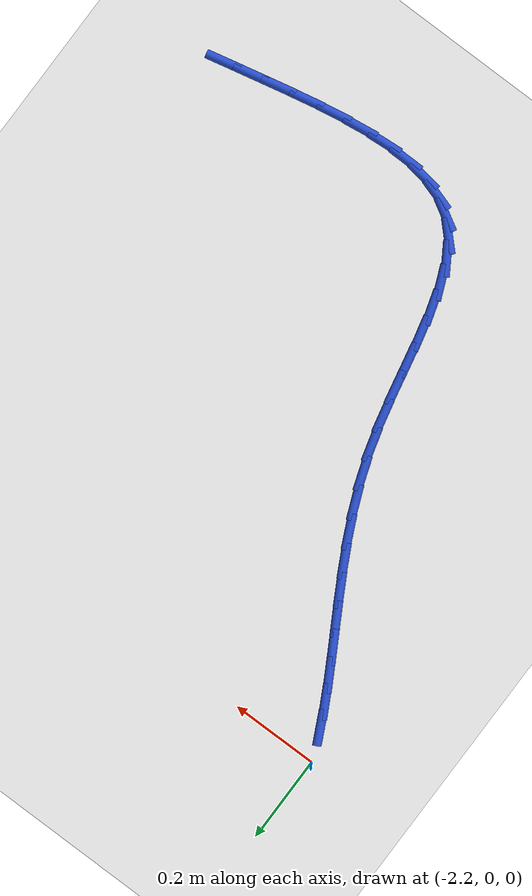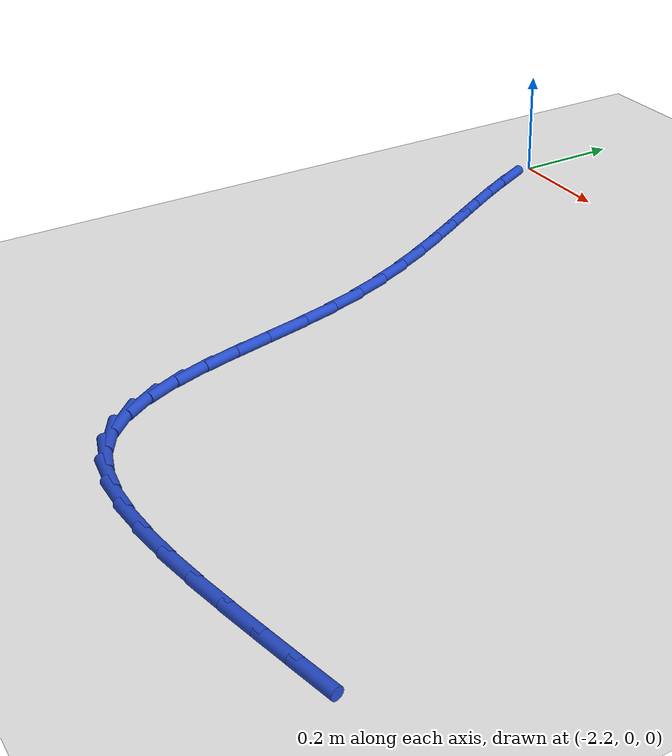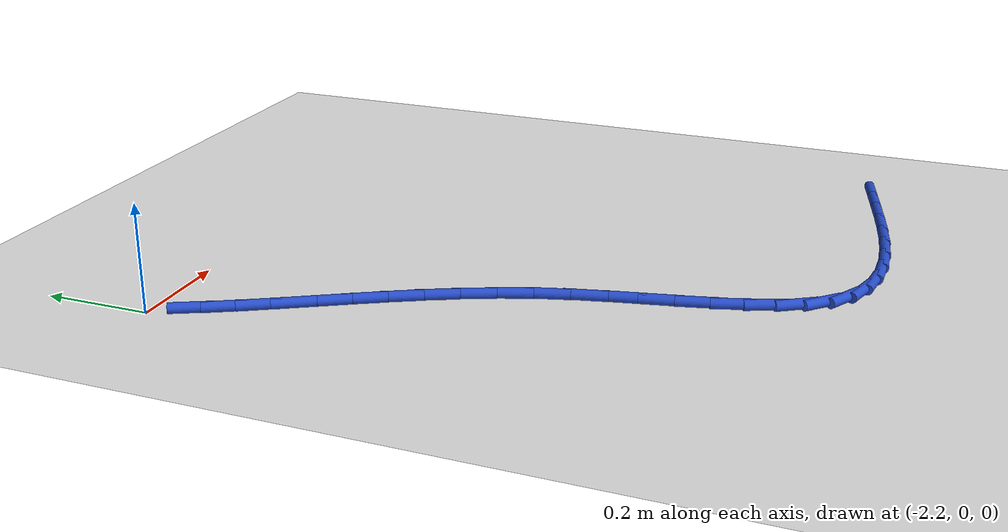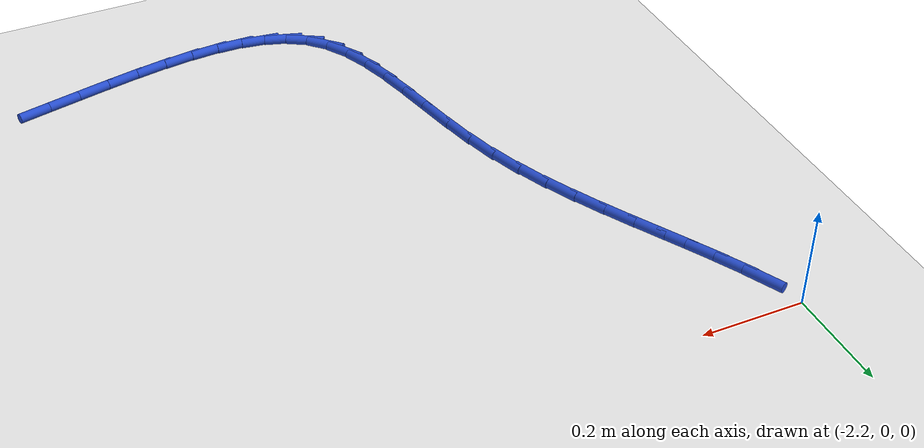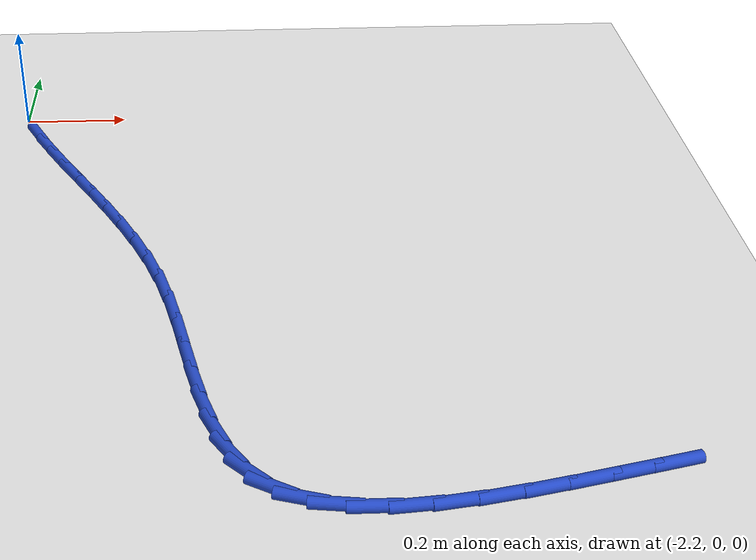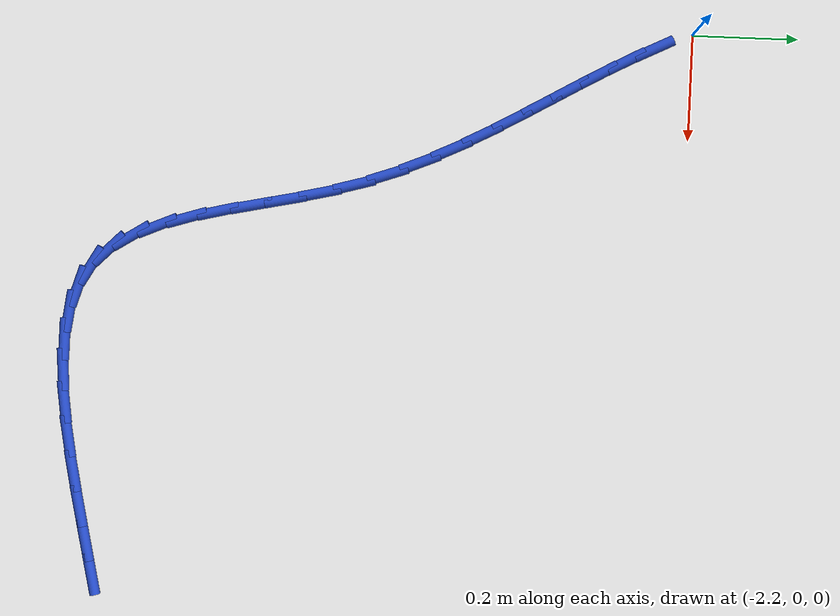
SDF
<sdf version="1.6">
 <world name="default">
  <model name="ground_plane">
   <static>1</static>
   <link name="link">
    <collision name="collision">
     <geometry><plane><normal>0 0 1</normal><size>100 100</size></plane></geometry>
     <surface><friction><ode><mu>100</mu><mu2>50</mu2></ode></friction></surface>
    </collision>
    <visual name="visual">
     <cast_shadows>0</cast_shadows>
     <geometry><plane><normal>0 0 1</normal><size>100 100</size></plane></geometry>
     <material>
      <script><uri>file://media/materials/scripts/gazebo.material</uri><name>Gazebo/WhiteGlow</name></script>
     </material>
    </visual>
   </link>
  </model>
  <model name="line">
   <link name="link_61">
    <pose>-2.1696558348237724 -0.07247194060002596 0.01 0 1.57 -1.1103534886064907</pose>
    <collision name="collision">
     <geometry><cylinder><radius>0.01</radius><length>0.08</length></cylinder></geometry>
    </collision>
    <visual name="visual">
     <material>
      <script><name>Gazebo/Blue</name><uri>file://media/materials/scripts/gazebo.material</uri></script>
     </material>
     <geometry><cylinder><radius>0.01</radius><length>0.08</length></cylinder></geometry>
    </visual>
   </link>
   <link name="link_62">
    <pose>-2.144435640439838 -0.12331906244717913 0.01 0 1.57 -1.076029853168065</pose>
    <collision name="collision">
     <geometry><cylinder><radius>0.01</radius><length>0.08</length></cylinder></geometry>
    </collision>
    <visual name="visual">
     <material>
      <script><name>Gazebo/Blue</name><uri>file://media/materials/scripts/gazebo.material</uri></script>
     </material>
     <geometry><cylinder><radius>0.01</radius><length>0.08</length></cylinder></geometry>
    </visual>
   </link>
   <link name="link_63">
    <pose>-2.116713575646689 -0.17470128853153608 0.01 0 1.57 -1.0555149021414167</pose>
    <collision name="collision">
     <geometry><cylinder><radius>0.01</radius><length>0.08</length></cylinder></geometry>
    </collision>
    <visual name="visual">
     <material>
      <script><name>Gazebo/Blue</name><uri>file://media/materials/scripts/gazebo.material</uri></script>
     </material>
     <geometry><cylinder><radius>0.01</radius><length>0.08</length></cylinder></geometry>
    </visual>
   </link>
   <link name="link_64">
    <pose>-2.0872167670555912 -0.22678696811822707 0.01 0 1.57 -1.0476308974208117</pose>
    <collision name="collision">
     <geometry><cylinder><radius>0.01</radius><length>0.08</length></cylinder></geometry>
    </collision>
    <visual name="visual">
     <material>
      <script><name>Gazebo/Blue</name><uri>file://media/materials/scripts/gazebo.material</uri></script>
     </material>
     <geometry><cylinder><radius>0.01</radius><length>0.08</length></cylinder></geometry>
    </visual>
   </link>
   <link name="link_65">
    <pose>-2.0566723412778054 -0.27974445047238417 0.01 0 1.57 -1.0515228263617589</pose>
    <collision name="collision">
     <geometry><cylinder><radius>0.01</radius><length>0.08</length></cylinder></geometry>
    </collision>
    <visual name="visual">
     <material>
      <script><name>Gazebo/Blue</name><uri>file://media/materials/scripts/gazebo.material</uri></script>
     </material>
     <geometry><cylinder><radius>0.01</radius><length>0.08</length></cylinder></geometry>
    </visual>
   </link>
   <link name="link_66">
    <pose>-2.0258074249245968 -0.3337420848591397 0.01 0 1.57 -1.0666342161551619</pose>
    <collision name="collision">
     <geometry><cylinder><radius>0.01</radius><length>0.08</length></cylinder></geometry>
    </collision>
    <visual name="visual">
     <material>
      <script><name>Gazebo/Blue</name><uri>file://media/materials/scripts/gazebo.material</uri></script>
     </material>
     <geometry><cylinder><radius>0.01</radius><length>0.08</length></cylinder></geometry>
    </visual>
   </link>
   <link name="link_67">
    <pose>-1.9953491446072291 -0.3889482205436237 0.01 0 1.57 -1.0926501760157672</pose>
    <collision name="collision">
     <geometry><cylinder><radius>0.01</radius><length>0.08</length></cylinder></geometry>
    </collision>
    <visual name="visual">
     <material>
      <script><name>Gazebo/Blue</name><uri>file://media/materials/scripts/gazebo.material</uri></script>
     </material>
     <geometry><cylinder><radius>0.01</radius><length>0.08</length></cylinder></geometry>
    </visual>
   </link>
   <link name="link_68">
    <pose>-1.9660246269369646 -0.4455312067909683 0.01 0 1.57 -1.129417018185429</pose>
    <collision name="collision">
     <geometry><cylinder><radius>0.01</radius><length>0.08</length></cylinder></geometry>
    </collision>
    <visual name="visual">
     <material>
      <script><name>Gazebo/Blue</name><uri>file://media/materials/scripts/gazebo.material</uri></script>
     </material>
     <geometry><cylinder><radius>0.01</radius><length>0.08</length></cylinder></geometry>
    </visual>
   </link>
   <link name="link_69">
    <pose>-1.9385609985250676 -0.5036593928663053 0.01 0 1.57 -1.176837661398522</pose>
    <collision name="collision">
     <geometry><cylinder><radius>0.01</radius><length>0.08</length></cylinder></geometry>
    </collision>
    <visual name="visual">
     <material>
      <script><name>Gazebo/Blue</name><uri>file://media/materials/scripts/gazebo.material</uri></script>
     </material>
     <geometry><cylinder><radius>0.01</radius><length>0.08</length></cylinder></geometry>
    </visual>
   </link>
   <link name="link_70">
    <pose>-1.9136853859828011 -0.5635011280347668 0.01 0 1.57 -1.2347394053772378</pose>
    <collision name="collision">
     <geometry><cylinder><radius>0.01</radius><length>0.08</length></cylinder></geometry>
    </collision>
    <visual name="visual">
     <material>
      <script><name>Gazebo/Blue</name><uri>file://media/materials/scripts/gazebo.material</uri></script>
     </material>
     <geometry><cylinder><radius>0.01</radius><length>0.08</length></cylinder></geometry>
    </visual>
   </link>
   <link name="link_71">
    <pose>-1.8921249159214295 -0.6252247615614828 0.01 0 1.57 -1.2975292385699435</pose>
    <collision name="collision">
     <geometry><cylinder><radius>0.01</radius><length>0.08</length></cylinder></geometry>
    </collision>
    <visual name="visual">
     <material>
      <script><name>Gazebo/Blue</name><uri>file://media/materials/scripts/gazebo.material</uri></script>
     </material>
     <geometry><cylinder><radius>0.01</radius><length>0.08</length></cylinder></geometry>
    </visual>
   </link>
   <link name="link_72">
    <pose>-1.8743107619497537 -0.6887834848694648 0.01 0 1.57 -1.3417143169640007</pose>
    <collision name="collision">
     <geometry><cylinder><radius>0.01</radius><length>0.08</length></cylinder></geometry>
    </collision>
    <visual name="visual">
     <material>
      <script><name>Gazebo/Blue</name><uri>file://media/materials/scripts/gazebo.material</uri></script>
     </material>
     <geometry><cylinder><radius>0.01</radius><length>0.08</length></cylinder></geometry>
    </visual>
   </link>
   <link name="link_73">
    <pose>-1.8593054659311035 -0.7531354940596149 0.01 0 1.57 -1.3618856849806722</pose>
    <collision name="collision">
     <geometry><cylinder><radius>0.01</radius><length>0.08</length></cylinder></geometry>
    </collision>
    <visual name="visual">
     <material>
      <script><name>Gazebo/Blue</name><uri>file://media/materials/scripts/gazebo.material</uri></script>
     </material>
     <geometry><cylinder><radius>0.01</radius><length>0.08</length></cylinder></geometry>
    </visual>
   </link>
   <link name="link_74">
    <pose>-1.845776213327826 -0.816951561116857 0.01 0 1.57 -1.3579924521917848</pose>
    <collision name="collision">
     <geometry><cylinder><radius>0.01</radius><length>0.08</length></cylinder></geometry>
    </collision>
    <visual name="visual">
     <material>
      <script><name>Gazebo/Blue</name><uri>file://media/materials/scripts/gazebo.material</uri></script>
     </material>
     <geometry><cylinder><radius>0.01</radius><length>0.08</length></cylinder></geometry>
    </visual>
   </link>
   <link name="link_75">
    <pose>-1.8323901509353353 -0.8789024299152499 0.01 0 1.57 -1.3276346102083723</pose>
    <collision name="collision">
     <geometry><cylinder><radius>0.01</radius><length>0.08</length></cylinder></geometry>
    </collision>
    <visual name="visual">
     <material>
      <script><name>Gazebo/Blue</name><uri>file://media/materials/scripts/gazebo.material</uri></script>
     </material>
     <geometry><cylinder><radius>0.01</radius><length>0.08</length></cylinder></geometry>
    </visual>
   </link>
   <link name="link_76">
    <pose>-1.817814425549044 -0.9376588443288548 0.01 0 1.57 -1.2653849118862566</pose>
    <collision name="collision">
     <geometry><cylinder><radius>0.01</radius><length>0.08</length></cylinder></geometry>
    </collision>
    <visual name="visual">
     <material>
      <script><name>Gazebo/Blue</name><uri>file://media/materials/scripts/gazebo.material</uri></script>
     </material>
     <geometry><cylinder><radius>0.01</radius><length>0.08</length></cylinder></geometry>
    </visual>
   </link>
   <link name="link_77">
    <pose>-1.8007161839643657 -0.9918915482317324 0.01 0 1.57 -1.162078924175486</pose>
    <collision name="collision">
     <geometry><cylinder><radius>0.01</radius><length>0.08</length></cylinder></geometry>
    </collision>
    <visual name="visual">
     <material>
      <script><name>Gazebo/Blue</name><uri>file://media/materials/scripts/gazebo.material</uri></script>
     </material>
     <geometry><cylinder><radius>0.01</radius><length>0.08</length></cylinder></geometry>
    </visual>
   </link>
   <link name="link_78">
    <pose>-1.779762572976712 -1.0402712854979432 0.01 0 1.57 -1.0053599041911607</pose>
    <collision name="collision">
     <geometry><cylinder><radius>0.01</radius><length>0.08</length></cylinder></geometry>
    </collision>
    <visual name="visual">
     <material>
      <script><name>Gazebo/Blue</name><uri>file://media/materials/scripts/gazebo.material</uri></script>
     </material>
     <geometry><cylinder><radius>0.01</radius><length>0.08</length></cylinder></geometry>
    </visual>
   </link>
   <link name="link_79">
    <pose>-1.7536207393814978 -1.081468800001547 0.01 0 1.57 -0.7857520513863183</pose>
    <collision name="collision">
     <geometry><cylinder><radius>0.01</radius><length>0.08</length></cylinder></geometry>
    </collision>
    <visual name="visual">
     <material>
      <script><name>Gazebo/Blue</name><uri>file://media/materials/scripts/gazebo.material</uri></script>
     </material>
     <geometry><cylinder><radius>0.01</radius><length>0.08</length></cylinder></geometry>
    </visual>
   </link>
   <link name="link_80">
    <pose>-1.7209578299741346 -1.1141548356166044 0.01 0 1.57 -0.5239746902178373</pose>
    <collision name="collision">
     <geometry><cylinder><radius>0.01</radius><length>0.08</length></cylinder></geometry>
    </collision>
    <visual name="visual">
     <material>
      <script><name>Gazebo/Blue</name><uri>file://media/materials/scripts/gazebo.material</uri></script>
     </material>
     <geometry><cylinder><radius>0.01</radius><length>0.08</length></cylinder></geometry>
    </visual>
   </link>
   <link name="link_81">
    <pose>-1.6807944143201181 -1.1373633295137944 0.01 0 1.57 -0.2976294040332097</pose>
    <collision name="collision">
     <geometry><cylinder><radius>0.01</radius><length>0.08</length></cylinder></geometry>
    </collision>
    <visual name="visual">
     <material>
      <script><name>Gazebo/Blue</name><uri>file://media/materials/scripts/gazebo.material</uri></script>
     </material>
     <geometry><cylinder><radius>0.01</radius><length>0.08</length></cylinder></geometry>
    </visual>
   </link>
   <link name="link_82">
    <pose>-1.6337667915844423 -1.1517886160123676 0.01 0 1.57 -0.12829510554925813</pose>
    <collision name="collision">
     <geometry><cylinder><radius>0.01</radius><length>0.08</length></cylinder></geometry>
    </collision>
    <visual name="visual">
     <material>
      <script><name>Gazebo/Blue</name><uri>file://media/materials/scripts/gazebo.material</uri></script>
     </material>
     <geometry><cylinder><radius>0.01</radius><length>0.08</length></cylinder></geometry>
    </visual>
   </link>
   <link name="link_83">
    <pose>-1.5809727192644325 -1.1585992449806535 0.01 0 1.57 -0.006344165179064006</pose>
    <collision name="collision">
     <geometry><cylinder><radius>0.01</radius><length>0.08</length></cylinder></geometry>
    </collision>
    <visual name="visual">
     <material>
      <script><name>Gazebo/Blue</name><uri>file://media/materials/scripts/gazebo.material</uri></script>
     </material>
     <geometry><cylinder><radius>0.01</radius><length>0.08</length></cylinder></geometry>
    </visual>
   </link>
   <link name="link_84">
    <pose>-1.5235099904996383 -1.158963802914552 0.01 0 1.57 0.08032226794253829</pose>
    <collision name="collision">
     <geometry><cylinder><radius>0.01</radius><length>0.08</length></cylinder></geometry>
    </collision>
    <visual name="visual">
     <material>
      <script><name>Gazebo/Blue</name><uri>file://media/materials/scripts/gazebo.material</uri></script>
     </material>
     <geometry><cylinder><radius>0.01</radius><length>0.08</length></cylinder></geometry>
    </visual>
   </link>
   <link name="link_85">
    <pose>-1.462476398429608 -1.154050876309962 0.01 0 1.57 0.14111682038457607</pose>
    <collision name="collision">
     <geometry><cylinder><radius>0.01</radius><length>0.08</length></cylinder></geometry>
    </collision>
    <visual name="visual">
     <material>
      <script><name>Gazebo/Blue</name><uri>file://media/materials/scripts/gazebo.material</uri></script>
     </material>
     <geometry><cylinder><radius>0.01</radius><length>0.08</length></cylinder></geometry>
    </visual>
   </link>
   <link name="link_86">
    <pose>-1.398969736193894 -1.145029051662783 0.01 0 1.57 0.18232035548093561</pose>
    <collision name="collision">
     <geometry><cylinder><radius>0.01</radius><length>0.08</length></cylinder></geometry>
    </collision>
    <visual name="visual">
     <material>
      <script><name>Gazebo/Blue</name><uri>file://media/materials/scripts/gazebo.material</uri></script>
     </material>
     <geometry><cylinder><radius>0.01</radius><length>0.08</length></cylinder></geometry>
    </visual>
   </link>
   <link name="link_87">
    <pose>-1.3340877969320444 -1.1330669154689135 0.01 0 1.57 0.20773263745244636</pose>
    <collision name="collision">
     <geometry><cylinder><radius>0.01</radius><length>0.08</length></cylinder></geometry>
    </collision>
    <visual name="visual">
     <material>
      <script><name>Gazebo/Blue</name><uri>file://media/materials/scripts/gazebo.material</uri></script>
     </material>
     <geometry><cylinder><radius>0.01</radius><length>0.08</length></cylinder></geometry>
    </visual>
   </link>
   <link name="link_88">
    <pose>-1.2689283737836097 -1.1193330542242532 0.01 0 1.57 0.2192552622803212</pose>
    <collision name="collision">
     <geometry><cylinder><radius>0.01</radius><length>0.08</length></cylinder></geometry>
    </collision>
    <visual name="visual">
     <material>
      <script><name>Gazebo/Blue</name><uri>file://media/materials/scripts/gazebo.material</uri></script>
     </material>
     <geometry><cylinder><radius>0.01</radius><length>0.08</length></cylinder></geometry>
    </visual>
   </link>
   <link name="link_89">
    <pose>-1.2045890827892534 -1.104995842785244 0.01 0 1.57 0.22099910634151013</pose>
    <collision name="collision">
     <geometry><cylinder><radius>0.01</radius><length>0.08</length></cylinder></geometry>
    </collision>
    <visual name="visual">
     <material>
      <script><name>Gazebo/Blue</name><uri>file://media/materials/scripts/gazebo.material</uri></script>
     </material>
     <geometry><cylinder><radius>0.01</radius><length>0.08</length></cylinder></geometry>
    </visual>
   </link>
   <link name="link_90">
    <pose>-1.141907863369357 -1.090913333224379 0.01 0 1.57 0.22419214552585898</pose>
    <collision name="collision">
     <geometry><cylinder><radius>0.01</radius><length>0.08</length></cylinder></geometry>
    </collision>
    <visual name="visual">
     <material>
      <script><name>Gazebo/Blue</name><uri>file://media/materials/scripts/gazebo.material</uri></script>
     </material>
     <geometry><cylinder><radius>0.01</radius><length>0.08</length></cylinder></geometry>
    </visual>
   </link>
  </model>
 </world>
</sdf>
